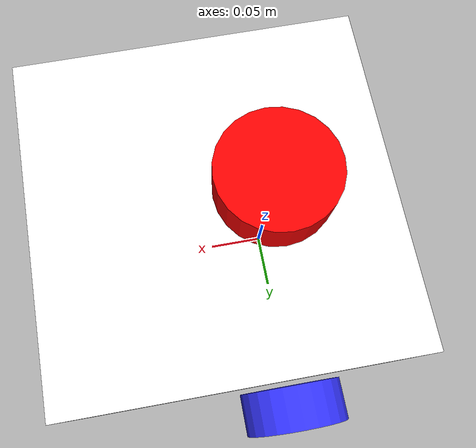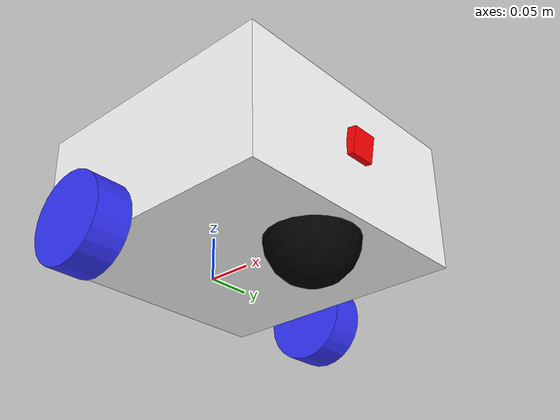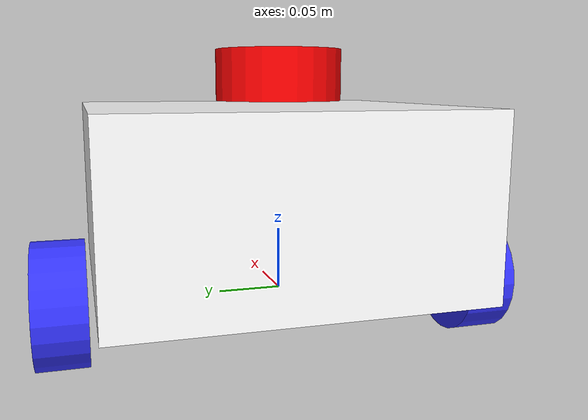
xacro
<?xml version="1.0"?>
<robot xmlns:xacro="http://www.ros.org/wiki/xacro"  name="robot">

    <xacro:arg name="use_ros2_control" default="true"/>

    <xacro:include filename="robot_core.xacro" />

    <xacro:if value="$(arg use_ros2_control)">
        <xacro:include filename="ros2_control.xacro" />
    </xacro:if>
    <xacro:unless value="$(arg use_ros2_control)">
        <xacro:include filename="gazebo_control.xacro" />
    </xacro:unless>

    <xacro:include filename="lidar.xacro"/>

    <xacro:include filename="camera.xacro"/>

</robot>

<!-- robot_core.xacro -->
<robot xmlns:xacro="http://www.ros.org/wiki/xacro" >

    <xacro:include filename="colors.xacro" />
    <xacro:include filename="inertial_macros.xacro"/>

    <!-- BASE LINK -->

    <!-- Treating center of the two drive wheels as the origin (for DiffDrive robot) -->
    <link name="base_link">
    </link>

    <!-- BASE_FOOTPRINT LINK -->

    <!-- created just for SLAM, acts as a shadow of base_link on the ground, constrain within x-y plane -->
    <joint name="base_footprint_joint" type="fixed">
        <parent link="base_link"/>
        <child link="base_footprint"/>
        <origin xyz="0 0 0" rpy="0 0 0"/>
    </joint>

    <link name="base_footprint">
    </link>

    <!-- CHASSIS LINK -->

    <!-- Simple box design of 0.3x0.3x0.15(m) -->
    <!-- Configuring joint, use Fixed joint -->
    <!-- Origin to be set just behind base_link by -0.1 in x-axis -->
    <joint name="chassis_joint" type="fixed">
        <parent link="base_link"/>
        <child link="chassis"/>
        <origin xyz="-0.1 0 0"/>
    </joint>
    <!-- Configuring link for chassis -->
    <!-- Origin refer to mock-up design -->
    <link name="chassis">
        <visual>
            <origin xyz="0.15 0 0.075" rpy="0 0 0"/>
            <geometry>
                <box size="0.3 0.3 0.15"/>
            </geometry>
            <material name="white"/>
        </visual>
        <collision>
            <origin xyz="0.15 0 0.075" rpy="0 0 0"/>
            <geometry>
                <box size="0.3 0.3 0.15"/>
            </geometry>
        </collision>
        <xacro:inertial_box mass="0.5" x="0.3" y="0.3" z="0.15">
            <origin xyz="0.15 0 0.075" rpy="0 0 0"/>
        </xacro:inertial_box>
    </link>

    <!-- Should Gazebo be mising colors, add the following lines under each link tag -->

    <!-- LEFT WHEEL LINK -->

    <!-- Origin refer to mock-up design -->
    <!-- Wheel rotation axis to be about the wheel z-axis, CCW is (+ve) therefore value 1 -->
    <joint name="left_wheel_joint" type="continuous">
        <parent link="base_link"/>
        <child link="left_wheel"/>
        <origin xyz="0 0.175 0" rpy="${-pi/2} 0 0"/>
        <axis xyz="0 0 1"/>
    </joint>

    <!-- Design of wheels at your discretion -->
    <!-- To avoid wheel drift in simulation (causing odom desync between Gazebo and RViz), have collision geometry to be a Sphere instead,
        reduces the contact point to be infinitely small -->
    <link name="left_wheel">
        <visual>
            <geometry>
                <cylinder length="0.04" radius="0.05"/>
            </geometry>
            <material name="blue"/>
        </visual>
        <collision>
            <geometry>
                <sphere radius="0.05"/>
            </geometry>
        </collision>
        <xacro:inertial_cylinder mass="0.1" length="0.04" radius="0.05" >
            <origin xyz="0 0 0" rpy="0 0 0"/>
        </xacro:inertial_cylinder>
    </link>

    <!-- RIGHT WHEEL LINK -->

    <!-- Origin refer to mock-up design -->
    <!-- Wheel rotation axis to be about the wheel z-axis, CCW is (+ve) therefore value -1 -->
    <joint name="right_wheel_joint" type="continuous">
        <parent link="base_link"/>
        <child link="right_wheel"/>
        <origin xyz="0 -0.175 0" rpy="${pi/2} 0 0"/>
        <axis xyz="0 0 -1"/>
    </joint>

    <!-- Design of wheels at your discretion -->
    <!-- To avoid wheel drift in simulation (causing odom desync between Gazebo and RViz), have collision geometry to be a Sphere instead,
        reduces the contact point to be infinitely small -->
    <link name="right_wheel">
        <visual>
            <geometry>
                <cylinder length="0.04" radius="0.05"/>
            </geometry>
            <material name="blue"/>
        </visual>
        <collision>
            <geometry>
                <sphere radius="0.05"/>
            </geometry>
        </collision>
        <xacro:inertial_cylinder mass="0.1" length="0.04" radius="0.05">
            <origin xyz="0 0 0" rpy="0 0 0"/>
        </xacro:inertial_cylinder>
    </link>

    <!-- CASTER WHEEL -->

    <!-- Parent link to be chassis -->
    <!-- Have it as a frictionless sphere, have radius match that of the wheels at 0.05m -->
    <joint name="caster_wheel_joint" type="fixed">
        <parent link="chassis"/>
        <child link="caster_wheel"/>
        <origin xyz="0.24 0 0" rpy="0 0 0"/>
    </joint>

    <link name="caster_wheel">
        <visual>
            <geometry>
                <sphere radius="0.05"/>
            </geometry>
            <material name="black"/>
        </visual>
        <collision>
            <geometry>
                <sphere radius="0.05"/>
            </geometry>
        </collision>
        <xacro:inertial_sphere mass="0.1" radius="0.05">
            <origin xyz="0 0 0" rpy="0 0 0"/>
        </xacro:inertial_sphere>
    </link>

    <!-- Configure friction coefficients mu1 and mu2, set to either zero or small number at your choosing -->
    <gazebo reference="caster_wheel">
        <mu1 value="0.001"/>
        <mu2 value="0.001"/>
    </gazebo>

</robot>

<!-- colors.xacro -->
<robot xmlns:xacro="http://www.ros.org/wiki/xacro" >

    <material name="white">
        <color rgba="1 1 1 1"/>
    </material>

    <material name="orange">
        <color rgba="1 0.3 0.1 1"/>
    </material>

    <material name="blue">
        <color rgba="0.2 0.2 1 1"/>
    </material>

    <material name="black">
        <color rgba="0 0 0 1"/>
    </material>

    <material name="red">
        <color rgba="1 0 0 1"/>
    </material>

</robot>

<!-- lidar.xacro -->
<robot xmlns:xacro="http://www.ros.org/wiki/xacro">

    <!-- Create Joint for LiDAR sensor -->
    <!-- link named as laser_frame as per common name standard -->
    <joint name="laser_joint" type="fixed">
        <parent link="chassis"/>
        <child link="laser_frame"/>
        <origin xyz="0.1 0 0.175" rpy="0 0 0"/>
    </joint>

   <!-- Create Link for LiDAR sensor -->
   <!-- LiDAR to have a cylinder as shape, for simplicity, have same parameters as our wheels -->
    <link name="laser_frame">
        <visual>
            <geometry>
                <cylinder radius="0.05" length="0.04"/>
            </geometry>
            <material name="red"/>
        </visual>
        <collision>
            <geometry>
                <cylinder radius="0.05" length="0.04"/>
            </geometry>
        </collision>
        <xacro:inertial_cylinder mass="0.1" length="0.04" radius="0.05">
            <origin xyz="0 0 0" rpy="0 0 0"/>
        </xacro:inertial_cylinder>
    </link>

    <!-- Simulating LiDAR sensor in Gazebo -->
    <gazebo reference="laser_frame">
        <sensor name="laser" type="gpu_lidar">
            <pose> 0 0 0 0 0 0 </pose>
            <visualize>true</visualize>
            <update_rate>10</update_rate>
            <topic>scan</topic>
            <gz_frame_id>laser_frame</gz_frame_id>
            <lidar>
                <scan>
                    <horizontal>
                        <samples>360</samples>
                        <min_angle>-3.14</min_angle>
                        <max_angle>3.14</max_angle>
                    </horizontal>
                </scan>
                <range>
                    <min>0.3</min>
                    <max>12.0</max>
                </range>
            </lidar>
        </sensor>
    </gazebo>
</robot>

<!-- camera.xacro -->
<robot xmlns:xacro="http://www.ros.org/wiki/xacro">

    <!-- Create camera_joint for camera sensor, we will base camera_joint_optical off this joint and reorient as needed -->
    <!-- 1. Normal Camera  -->
    <!-- 2. Ball Tracking Camera, adjusted pitch to 0.18 radians, camera pointed downwards towards floor -->
    <joint name="camera_joint" type="fixed">
        <parent link="chassis"/>
        <child link="camera_link"/>
        <origin xyz="0.305 0 0.08" rpy="0 0.18 0"/>
    </joint>

   <!-- Create camera_link -->
   <!-- Collision absent for simplicity -->
    <link name="camera_link">
        <visual>
            <geometry>
                <box size="0.01 0.03 0.03"/>
            </geometry>
            <material name="red"/>
        </visual>
    </link>

    <!-- Create camera_joint_optical, simply tag to camera_joint and reorient to match Image Standard -->
    <joint name="camera_joint_optical" type="fixed">
        <parent link="camera_link"/>
        <child link="camera_link_optical"/>
        <origin xyz="0 0 0" rpy="${-pi/2} 0 ${-pi/2}"/>
    </joint>

    <!-- Create  camera_link_optical -->
    <!-- Does not need visual or collision or inertial, think of it as an invisible joint acting as an alternative way
         of looking at camera_link -->
    <link name="camera_link_optical">
    </link>

    <gazebo reference='camera_link'>
        <sensor name='camera' type='camera'>
            <pose> 0 0 0 0 0 0 </pose>
            <visualize>true</visualize>
            <update_rate>10</update_rate>
            <camera>
                <camera_info_topic>camera/camera_info</camera_info_topic>
                <horizontal_fov>1.089</horizontal_fov>
                <image>
                    <format>R8G8B8</format>
                    <width>640</width>
                    <height>480</height>
                </image>
                <clip>
                    <near>0.05</near>
                    <far>8.0</far>
                </clip>
            </camera>
            <topic>camera/image_raw</topic>
            <gz_frame_id>camera_link_optical</gz_frame_id>
        </sensor>
    </gazebo>

</robot>
